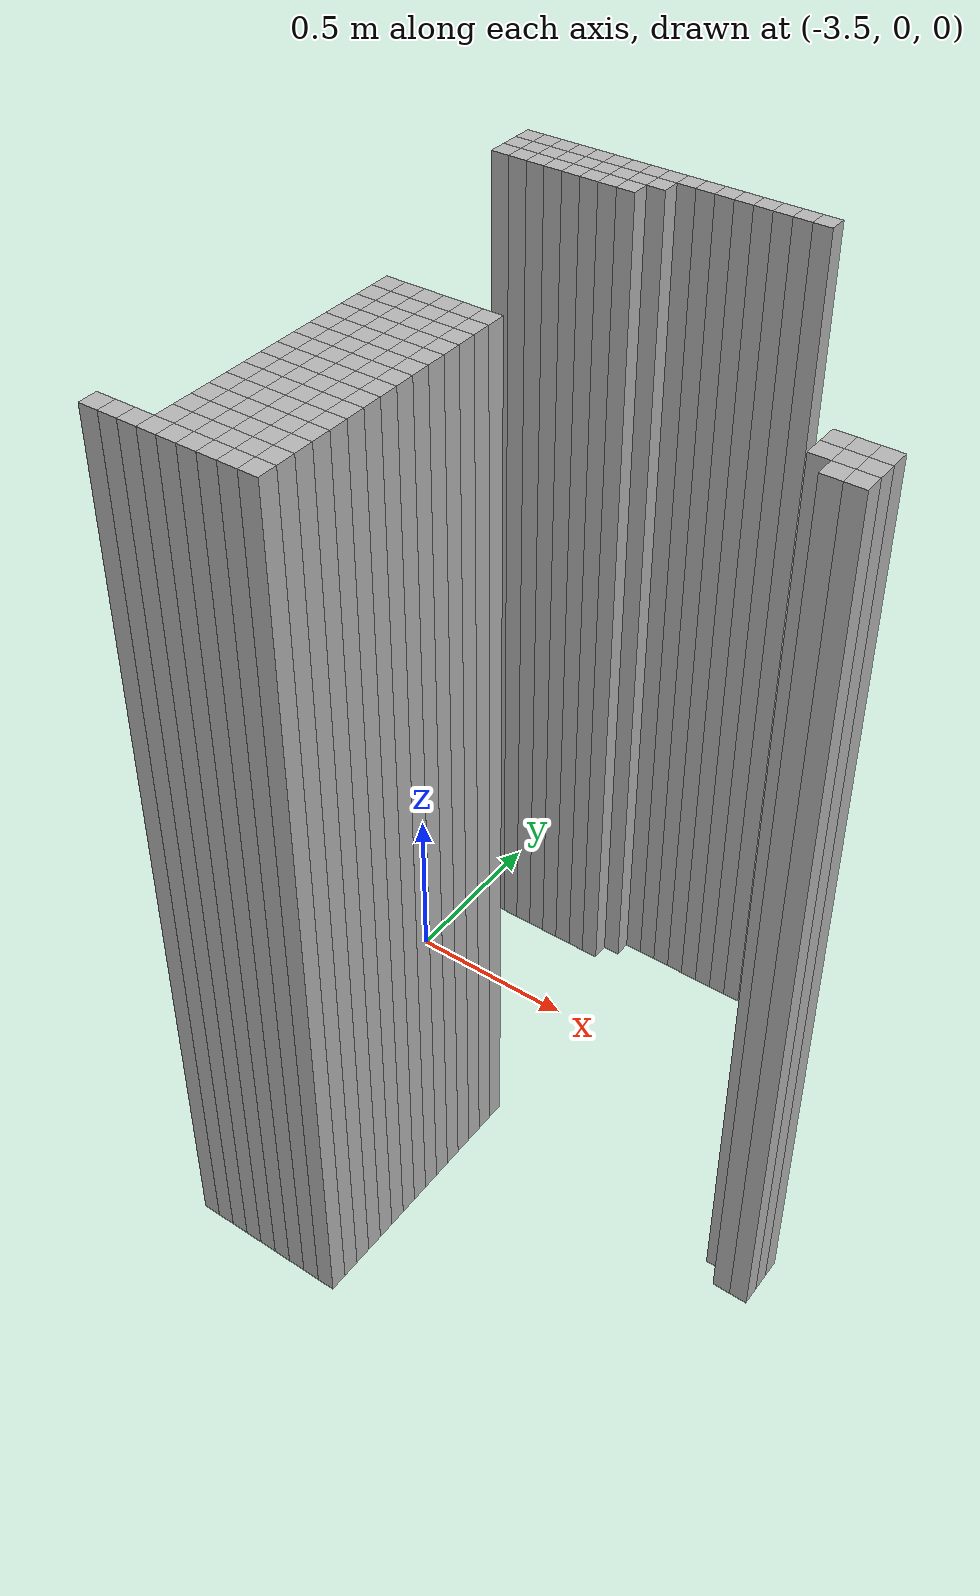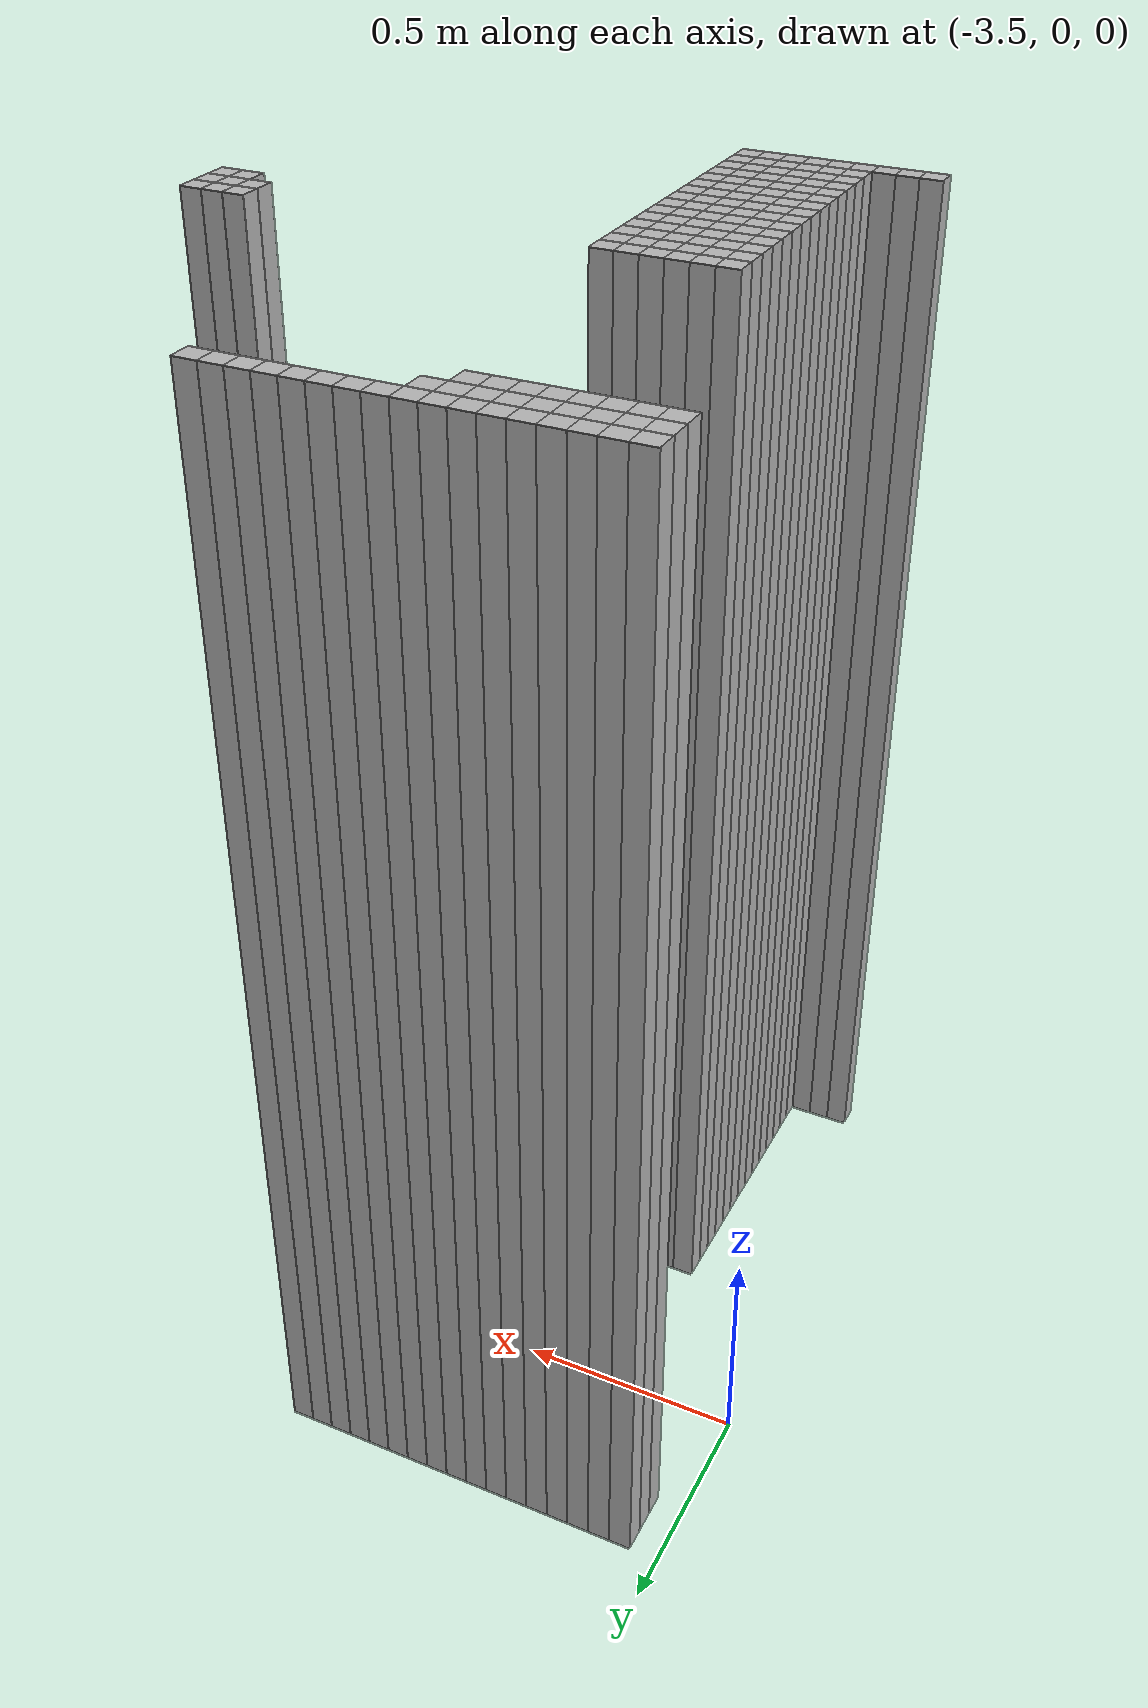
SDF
<sdf version="1.9">
 <world name="map_world">
  <model name="wall_155_146">
   <static>true</static>
   <pose>-3.411 0.380 1.250 0 0 0</pose>
   <link name="link">
    <collision name="collision"><geometry><box><size>0.050 0.050 2.500</size></box></geometry></collision>
    <visual name="visual"><geometry><box><size>0.050 0.050 2.500</size></box></geometry></visual>
   </link>
  </model>
  <model name="wall_156_146">
   <static>true</static>
   <pose>-3.361 0.380 1.250 0 0 0</pose>
   <link name="link">
    <collision name="collision"><geometry><box><size>0.050 0.050 2.500</size></box></geometry></collision>
    <visual name="visual"><geometry><box><size>0.050 0.050 2.500</size></box></geometry></visual>
   </link>
  </model>
  <model name="wall_157_146">
   <static>true</static>
   <pose>-3.311 0.380 1.250 0 0 0</pose>
   <link name="link">
    <collision name="collision"><geometry><box><size>0.050 0.050 2.500</size></box></geometry></collision>
    <visual name="visual"><geometry><box><size>0.050 0.050 2.500</size></box></geometry></visual>
   </link>
  </model>
  <model name="wall_158_146">
   <static>true</static>
   <pose>-3.261 0.380 1.250 0 0 0</pose>
   <link name="link">
    <collision name="collision"><geometry><box><size>0.050 0.050 2.500</size></box></geometry></collision>
    <visual name="visual"><geometry><box><size>0.050 0.050 2.500</size></box></geometry></visual>
   </link>
  </model>
  <model name="wall_159_146">
   <static>true</static>
   <pose>-3.211 0.380 1.250 0 0 0</pose>
   <link name="link">
    <collision name="collision"><geometry><box><size>0.050 0.050 2.500</size></box></geometry></collision>
    <visual name="visual"><geometry><box><size>0.050 0.050 2.500</size></box></geometry></visual>
   </link>
  </model>
  <model name="wall_160_146">
   <static>true</static>
   <pose>-3.161 0.380 1.250 0 0 0</pose>
   <link name="link">
    <collision name="collision"><geometry><box><size>0.050 0.050 2.500</size></box></geometry></collision>
    <visual name="visual"><geometry><box><size>0.050 0.050 2.500</size></box></geometry></visual>
   </link>
  </model>
  <model name="wall_161_146">
   <static>true</static>
   <pose>-3.111 0.380 1.250 0 0 0</pose>
   <link name="link">
    <collision name="collision"><geometry><box><size>0.050 0.050 2.500</size></box></geometry></collision>
    <visual name="visual"><geometry><box><size>0.050 0.050 2.500</size></box></geometry></visual>
   </link>
  </model>
  <model name="wall_162_146">
   <static>true</static>
   <pose>-3.061 0.380 1.250 0 0 0</pose>
   <link name="link">
    <collision name="collision"><geometry><box><size>0.050 0.050 2.500</size></box></geometry></collision>
    <visual name="visual"><geometry><box><size>0.050 0.050 2.500</size></box></geometry></visual>
   </link>
  </model>
  <model name="wall_163_146">
   <static>true</static>
   <pose>-3.011 0.380 1.250 0 0 0</pose>
   <link name="link">
    <collision name="collision"><geometry><box><size>0.050 0.050 2.500</size></box></geometry></collision>
    <visual name="visual"><geometry><box><size>0.050 0.050 2.500</size></box></geometry></visual>
   </link>
  </model>
  <model name="wall_164_146">
   <static>true</static>
   <pose>-2.961 0.380 1.250 0 0 0</pose>
   <link name="link">
    <collision name="collision"><geometry><box><size>0.050 0.050 2.500</size></box></geometry></collision>
    <visual name="visual"><geometry><box><size>0.050 0.050 2.500</size></box></geometry></visual>
   </link>
  </model>
  <model name="wall_165_146">
   <static>true</static>
   <pose>-2.911 0.380 1.250 0 0 0</pose>
   <link name="link">
    <collision name="collision"><geometry><box><size>0.050 0.050 2.500</size></box></geometry></collision>
    <visual name="visual"><geometry><box><size>0.050 0.050 2.500</size></box></geometry></visual>
   </link>
  </model>
  <model name="wall_166_146">
   <static>true</static>
   <pose>-2.861 0.380 1.250 0 0 0</pose>
   <link name="link">
    <collision name="collision"><geometry><box><size>0.050 0.050 2.500</size></box></geometry></collision>
    <visual name="visual"><geometry><box><size>0.050 0.050 2.500</size></box></geometry></visual>
   </link>
  </model>
  <model name="wall_167_146">
   <static>true</static>
   <pose>-2.811 0.380 1.250 0 0 0</pose>
   <link name="link">
    <collision name="collision"><geometry><box><size>0.050 0.050 2.500</size></box></geometry></collision>
    <visual name="visual"><geometry><box><size>0.050 0.050 2.500</size></box></geometry></visual>
   </link>
  </model>
  <model name="wall_168_146">
   <static>true</static>
   <pose>-2.761 0.380 1.250 0 0 0</pose>
   <link name="link">
    <collision name="collision"><geometry><box><size>0.050 0.050 2.500</size></box></geometry></collision>
    <visual name="visual"><geometry><box><size>0.050 0.050 2.500</size></box></geometry></visual>
   </link>
  </model>
  <model name="wall_169_146">
   <static>true</static>
   <pose>-2.711 0.380 1.250 0 0 0</pose>
   <link name="link">
    <collision name="collision"><geometry><box><size>0.050 0.050 2.500</size></box></geometry></collision>
    <visual name="visual"><geometry><box><size>0.050 0.050 2.500</size></box></geometry></visual>
   </link>
  </model>
  <model name="wall_170_146">
   <static>true</static>
   <pose>-2.661 0.380 1.250 0 0 0</pose>
   <link name="link">
    <collision name="collision"><geometry><box><size>0.050 0.050 2.500</size></box></geometry></collision>
    <visual name="visual"><geometry><box><size>0.050 0.050 2.500</size></box></geometry></visual>
   </link>
  </model>
  <model name="wall_171_146">
   <static>true</static>
   <pose>-2.611 0.380 1.250 0 0 0</pose>
   <link name="link">
    <collision name="collision"><geometry><box><size>0.050 0.050 2.500</size></box></geometry></collision>
    <visual name="visual"><geometry><box><size>0.050 0.050 2.500</size></box></geometry></visual>
   </link>
  </model>
  <model name="wall_155_147">
   <static>true</static>
   <pose>-3.411 0.330 1.250 0 0 0</pose>
   <link name="link">
    <collision name="collision"><geometry><box><size>0.050 0.050 2.500</size></box></geometry></collision>
    <visual name="visual"><geometry><box><size>0.050 0.050 2.500</size></box></geometry></visual>
   </link>
  </model>
  <model name="wall_156_147">
   <static>true</static>
   <pose>-3.361 0.330 1.250 0 0 0</pose>
   <link name="link">
    <collision name="collision"><geometry><box><size>0.050 0.050 2.500</size></box></geometry></collision>
    <visual name="visual"><geometry><box><size>0.050 0.050 2.500</size></box></geometry></visual>
   </link>
  </model>
  <model name="wall_157_147">
   <static>true</static>
   <pose>-3.311 0.330 1.250 0 0 0</pose>
   <link name="link">
    <collision name="collision"><geometry><box><size>0.050 0.050 2.500</size></box></geometry></collision>
    <visual name="visual"><geometry><box><size>0.050 0.050 2.500</size></box></geometry></visual>
   </link>
  </model>
  <model name="wall_158_147">
   <static>true</static>
   <pose>-3.261 0.330 1.250 0 0 0</pose>
   <link name="link">
    <collision name="collision"><geometry><box><size>0.050 0.050 2.500</size></box></geometry></collision>
    <visual name="visual"><geometry><box><size>0.050 0.050 2.500</size></box></geometry></visual>
   </link>
  </model>
  <model name="wall_159_147">
   <static>true</static>
   <pose>-3.211 0.330 1.250 0 0 0</pose>
   <link name="link">
    <collision name="collision"><geometry><box><size>0.050 0.050 2.500</size></box></geometry></collision>
    <visual name="visual"><geometry><box><size>0.050 0.050 2.500</size></box></geometry></visual>
   </link>
  </model>
  <model name="wall_160_147">
   <static>true</static>
   <pose>-3.161 0.330 1.250 0 0 0</pose>
   <link name="link">
    <collision name="collision"><geometry><box><size>0.050 0.050 2.500</size></box></geometry></collision>
    <visual name="visual"><geometry><box><size>0.050 0.050 2.500</size></box></geometry></visual>
   </link>
  </model>
  <model name="wall_161_147">
   <static>true</static>
   <pose>-3.111 0.330 1.250 0 0 0</pose>
   <link name="link">
    <collision name="collision"><geometry><box><size>0.050 0.050 2.500</size></box></geometry></collision>
    <visual name="visual"><geometry><box><size>0.050 0.050 2.500</size></box></geometry></visual>
   </link>
  </model>
  <model name="wall_162_147">
   <static>true</static>
   <pose>-3.061 0.330 1.250 0 0 0</pose>
   <link name="link">
    <collision name="collision"><geometry><box><size>0.050 0.050 2.500</size></box></geometry></collision>
    <visual name="visual"><geometry><box><size>0.050 0.050 2.500</size></box></geometry></visual>
   </link>
  </model>
  <model name="wall_163_147">
   <static>true</static>
   <pose>-3.011 0.330 1.250 0 0 0</pose>
   <link name="link">
    <collision name="collision"><geometry><box><size>0.050 0.050 2.500</size></box></geometry></collision>
    <visual name="visual"><geometry><box><size>0.050 0.050 2.500</size></box></geometry></visual>
   </link>
  </model>
  <model name="wall_155_148">
   <static>true</static>
   <pose>-3.411 0.280 1.250 0 0 0</pose>
   <link name="link">
    <collision name="collision"><geometry><box><size>0.050 0.050 2.500</size></box></geometry></collision>
    <visual name="visual"><geometry><box><size>0.050 0.050 2.500</size></box></geometry></visual>
   </link>
  </model>
  <model name="wall_156_148">
   <static>true</static>
   <pose>-3.361 0.280 1.250 0 0 0</pose>
   <link name="link">
    <collision name="collision"><geometry><box><size>0.050 0.050 2.500</size></box></geometry></collision>
    <visual name="visual"><geometry><box><size>0.050 0.050 2.500</size></box></geometry></visual>
   </link>
  </model>
  <model name="wall_157_148">
   <static>true</static>
   <pose>-3.311 0.280 1.250 0 0 0</pose>
   <link name="link">
    <collision name="collision"><geometry><box><size>0.050 0.050 2.500</size></box></geometry></collision>
    <visual name="visual"><geometry><box><size>0.050 0.050 2.500</size></box></geometry></visual>
   </link>
  </model>
  <model name="wall_158_148">
   <static>true</static>
   <pose>-3.261 0.280 1.250 0 0 0</pose>
   <link name="link">
    <collision name="collision"><geometry><box><size>0.050 0.050 2.500</size></box></geometry></collision>
    <visual name="visual"><geometry><box><size>0.050 0.050 2.500</size></box></geometry></visual>
   </link>
  </model>
  <model name="wall_159_148">
   <static>true</static>
   <pose>-3.211 0.280 1.250 0 0 0</pose>
   <link name="link">
    <collision name="collision"><geometry><box><size>0.050 0.050 2.500</size></box></geometry></collision>
    <visual name="visual"><geometry><box><size>0.050 0.050 2.500</size></box></geometry></visual>
   </link>
  </model>
  <model name="wall_160_148">
   <static>true</static>
   <pose>-3.161 0.280 1.250 0 0 0</pose>
   <link name="link">
    <collision name="collision"><geometry><box><size>0.050 0.050 2.500</size></box></geometry></collision>
    <visual name="visual"><geometry><box><size>0.050 0.050 2.500</size></box></geometry></visual>
   </link>
  </model>
  <model name="wall_161_148">
   <static>true</static>
   <pose>-3.111 0.280 1.250 0 0 0</pose>
   <link name="link">
    <collision name="collision"><geometry><box><size>0.050 0.050 2.500</size></box></geometry></collision>
    <visual name="visual"><geometry><box><size>0.050 0.050 2.500</size></box></geometry></visual>
   </link>
  </model>
  <model name="wall_162_148">
   <static>true</static>
   <pose>-3.061 0.280 1.250 0 0 0</pose>
   <link name="link">
    <collision name="collision"><geometry><box><size>0.050 0.050 2.500</size></box></geometry></collision>
    <visual name="visual"><geometry><box><size>0.050 0.050 2.500</size></box></geometry></visual>
   </link>
  </model>
  <model name="wall_159_162">
   <static>true</static>
   <pose>-3.211 -0.420 1.250 0 0 0</pose>
   <link name="link">
    <collision name="collision"><geometry><box><size>0.050 0.050 2.500</size></box></geometry></collision>
    <visual name="visual"><geometry><box><size>0.050 0.050 2.500</size></box></geometry></visual>
   </link>
  </model>
  <model name="wall_160_162">
   <static>true</static>
   <pose>-3.161 -0.420 1.250 0 0 0</pose>
   <link name="link">
    <collision name="collision"><geometry><box><size>0.050 0.050 2.500</size></box></geometry></collision>
    <visual name="visual"><geometry><box><size>0.050 0.050 2.500</size></box></geometry></visual>
   </link>
  </model>
  <model name="wall_161_162">
   <static>true</static>
   <pose>-3.111 -0.420 1.250 0 0 0</pose>
   <link name="link">
    <collision name="collision"><geometry><box><size>0.050 0.050 2.500</size></box></geometry></collision>
    <visual name="visual"><geometry><box><size>0.050 0.050 2.500</size></box></geometry></visual>
   </link>
  </model>
  <model name="wall_162_162">
   <static>true</static>
   <pose>-3.061 -0.420 1.250 0 0 0</pose>
   <link name="link">
    <collision name="collision"><geometry><box><size>0.050 0.050 2.500</size></box></geometry></collision>
    <visual name="visual"><geometry><box><size>0.050 0.050 2.500</size></box></geometry></visual>
   </link>
  </model>
  <model name="wall_163_162">
   <static>true</static>
   <pose>-3.011 -0.420 1.250 0 0 0</pose>
   <link name="link">
    <collision name="collision"><geometry><box><size>0.050 0.050 2.500</size></box></geometry></collision>
    <visual name="visual"><geometry><box><size>0.050 0.050 2.500</size></box></geometry></visual>
   </link>
  </model>
  <model name="wall_164_162">
   <static>true</static>
   <pose>-2.961 -0.420 1.250 0 0 0</pose>
   <link name="link">
    <collision name="collision"><geometry><box><size>0.050 0.050 2.500</size></box></geometry></collision>
    <visual name="visual"><geometry><box><size>0.050 0.050 2.500</size></box></geometry></visual>
   </link>
  </model>
  <model name="wall_180_162">
   <static>true</static>
   <pose>-2.161 -0.420 1.250 0 0 0</pose>
   <link name="link">
    <collision name="collision"><geometry><box><size>0.050 0.050 2.500</size></box></geometry></collision>
    <visual name="visual"><geometry><box><size>0.050 0.050 2.500</size></box></geometry></visual>
   </link>
  </model>
  <model name="wall_181_162">
   <static>true</static>
   <pose>-2.111 -0.420 1.250 0 0 0</pose>
   <link name="link">
    <collision name="collision"><geometry><box><size>0.050 0.050 2.500</size></box></geometry></collision>
    <visual name="visual"><geometry><box><size>0.050 0.050 2.500</size></box></geometry></visual>
   </link>
  </model>
  <model name="wall_182_162">
   <static>true</static>
   <pose>-2.061 -0.420 1.250 0 0 0</pose>
   <link name="link">
    <collision name="collision"><geometry><box><size>0.050 0.050 2.500</size></box></geometry></collision>
    <visual name="visual"><geometry><box><size>0.050 0.050 2.500</size></box></geometry></visual>
   </link>
  </model>
  <model name="wall_159_163">
   <static>true</static>
   <pose>-3.211 -0.470 1.250 0 0 0</pose>
   <link name="link">
    <collision name="collision"><geometry><box><size>0.050 0.050 2.500</size></box></geometry></collision>
    <visual name="visual"><geometry><box><size>0.050 0.050 2.500</size></box></geometry></visual>
   </link>
  </model>
  <model name="wall_160_163">
   <static>true</static>
   <pose>-3.161 -0.470 1.250 0 0 0</pose>
   <link name="link">
    <collision name="collision"><geometry><box><size>0.050 0.050 2.500</size></box></geometry></collision>
    <visual name="visual"><geometry><box><size>0.050 0.050 2.500</size></box></geometry></visual>
   </link>
  </model>
  <model name="wall_161_163">
   <static>true</static>
   <pose>-3.111 -0.470 1.250 0 0 0</pose>
   <link name="link">
    <collision name="collision"><geometry><box><size>0.050 0.050 2.500</size></box></geometry></collision>
    <visual name="visual"><geometry><box><size>0.050 0.050 2.500</size></box></geometry></visual>
   </link>
  </model>
  <model name="wall_162_163">
   <static>true</static>
   <pose>-3.061 -0.470 1.250 0 0 0</pose>
   <link name="link">
    <collision name="collision"><geometry><box><size>0.050 0.050 2.500</size></box></geometry></collision>
    <visual name="visual"><geometry><box><size>0.050 0.050 2.500</size></box></geometry></visual>
   </link>
  </model>
  <model name="wall_163_163">
   <static>true</static>
   <pose>-3.011 -0.470 1.250 0 0 0</pose>
   <link name="link">
    <collision name="collision"><geometry><box><size>0.050 0.050 2.500</size></box></geometry></collision>
    <visual name="visual"><geometry><box><size>0.050 0.050 2.500</size></box></geometry></visual>
   </link>
  </model>
  <model name="wall_164_163">
   <static>true</static>
   <pose>-2.961 -0.470 1.250 0 0 0</pose>
   <link name="link">
    <collision name="collision"><geometry><box><size>0.050 0.050 2.500</size></box></geometry></collision>
    <visual name="visual"><geometry><box><size>0.050 0.050 2.500</size></box></geometry></visual>
   </link>
  </model>
  <model name="wall_180_163">
   <static>true</static>
   <pose>-2.161 -0.470 1.250 0 0 0</pose>
   <link name="link">
    <collision name="collision"><geometry><box><size>0.050 0.050 2.500</size></box></geometry></collision>
    <visual name="visual"><geometry><box><size>0.050 0.050 2.500</size></box></geometry></visual>
   </link>
  </model>
  <model name="wall_181_163">
   <static>true</static>
   <pose>-2.111 -0.470 1.250 0 0 0</pose>
   <link name="link">
    <collision name="collision"><geometry><box><size>0.050 0.050 2.500</size></box></geometry></collision>
    <visual name="visual"><geometry><box><size>0.050 0.050 2.500</size></box></geometry></visual>
   </link>
  </model>
  <model name="wall_182_163">
   <static>true</static>
   <pose>-2.061 -0.470 1.250 0 0 0</pose>
   <link name="link">
    <collision name="collision"><geometry><box><size>0.050 0.050 2.500</size></box></geometry></collision>
    <visual name="visual"><geometry><box><size>0.050 0.050 2.500</size></box></geometry></visual>
   </link>
  </model>
  <model name="wall_159_164">
   <static>true</static>
   <pose>-3.211 -0.520 1.250 0 0 0</pose>
   <link name="link">
    <collision name="collision"><geometry><box><size>0.050 0.050 2.500</size></box></geometry></collision>
    <visual name="visual"><geometry><box><size>0.050 0.050 2.500</size></box></geometry></visual>
   </link>
  </model>
  <model name="wall_160_164">
   <static>true</static>
   <pose>-3.161 -0.520 1.250 0 0 0</pose>
   <link name="link">
    <collision name="collision"><geometry><box><size>0.050 0.050 2.500</size></box></geometry></collision>
    <visual name="visual"><geometry><box><size>0.050 0.050 2.500</size></box></geometry></visual>
   </link>
  </model>
  <model name="wall_161_164">
   <static>true</static>
   <pose>-3.111 -0.520 1.250 0 0 0</pose>
   <link name="link">
    <collision name="collision"><geometry><box><size>0.050 0.050 2.500</size></box></geometry></collision>
    <visual name="visual"><geometry><box><size>0.050 0.050 2.500</size></box></geometry></visual>
   </link>
  </model>
  <model name="wall_162_164">
   <static>true</static>
   <pose>-3.061 -0.520 1.250 0 0 0</pose>
   <link name="link">
    <collision name="collision"><geometry><box><size>0.050 0.050 2.500</size></box></geometry></collision>
    <visual name="visual"><geometry><box><size>0.050 0.050 2.500</size></box></geometry></visual>
   </link>
  </model>
  <model name="wall_163_164">
   <static>true</static>
   <pose>-3.011 -0.520 1.250 0 0 0</pose>
   <link name="link">
    <collision name="collision"><geometry><box><size>0.050 0.050 2.500</size></box></geometry></collision>
    <visual name="visual"><geometry><box><size>0.050 0.050 2.500</size></box></geometry></visual>
   </link>
  </model>
  <model name="wall_164_164">
   <static>true</static>
   <pose>-2.961 -0.520 1.250 0 0 0</pose>
   <link name="link">
    <collision name="collision"><geometry><box><size>0.050 0.050 2.500</size></box></geometry></collision>
    <visual name="visual"><geometry><box><size>0.050 0.050 2.500</size></box></geometry></visual>
   </link>
  </model>
  <model name="wall_181_164">
   <static>true</static>
   <pose>-2.111 -0.520 1.250 0 0 0</pose>
   <link name="link">
    <collision name="collision"><geometry><box><size>0.050 0.050 2.500</size></box></geometry></collision>
    <visual name="visual"><geometry><box><size>0.050 0.050 2.500</size></box></geometry></visual>
   </link>
  </model>
  <model name="wall_182_164">
   <static>true</static>
   <pose>-2.061 -0.520 1.250 0 0 0</pose>
   <link name="link">
    <collision name="collision"><geometry><box><size>0.050 0.050 2.500</size></box></geometry></collision>
    <visual name="visual"><geometry><box><size>0.050 0.050 2.500</size></box></geometry></visual>
   </link>
  </model>
  <model name="wall_159_165">
   <static>true</static>
   <pose>-3.211 -0.570 1.250 0 0 0</pose>
   <link name="link">
    <collision name="collision"><geometry><box><size>0.050 0.050 2.500</size></box></geometry></collision>
    <visual name="visual"><geometry><box><size>0.050 0.050 2.500</size></box></geometry></visual>
   </link>
  </model>
  <model name="wall_160_165">
   <static>true</static>
   <pose>-3.161 -0.570 1.250 0 0 0</pose>
   <link name="link">
    <collision name="collision"><geometry><box><size>0.050 0.050 2.500</size></box></geometry></collision>
    <visual name="visual"><geometry><box><size>0.050 0.050 2.500</size></box></geometry></visual>
   </link>
  </model>
  <model name="wall_161_165">
   <static>true</static>
   <pose>-3.111 -0.570 1.250 0 0 0</pose>
   <link name="link">
    <collision name="collision"><geometry><box><size>0.050 0.050 2.500</size></box></geometry></collision>
    <visual name="visual"><geometry><box><size>0.050 0.050 2.500</size></box></geometry></visual>
   </link>
  </model>
  <model name="wall_162_165">
   <static>true</static>
   <pose>-3.061 -0.570 1.250 0 0 0</pose>
   <link name="link">
    <collision name="collision"><geometry><box><size>0.050 0.050 2.500</size></box></geometry></collision>
    <visual name="visual"><geometry><box><size>0.050 0.050 2.500</size></box></geometry></visual>
   </link>
  </model>
  <model name="wall_163_165">
   <static>true</static>
   <pose>-3.011 -0.570 1.250 0 0 0</pose>
   <link name="link">
    <collision name="collision"><geometry><box><size>0.050 0.050 2.500</size></box></geometry></collision>
    <visual name="visual"><geometry><box><size>0.050 0.050 2.500</size></box></geometry></visual>
   </link>
  </model>
  <model name="wall_164_165">
   <static>true</static>
   <pose>-2.961 -0.570 1.250 0 0 0</pose>
   <link name="link">
    <collision name="collision"><geometry><box><size>0.050 0.050 2.500</size></box></geometry></collision>
    <visual name="visual"><geometry><box><size>0.050 0.050 2.500</size></box></geometry></visual>
   </link>
  </model>
  <model name="wall_159_166">
   <static>true</static>
   <pose>-3.211 -0.620 1.250 0 0 0</pose>
   <link name="link">
    <collision name="collision"><geometry><box><size>0.050 0.050 2.500</size></box></geometry></collision>
    <visual name="visual"><geometry><box><size>0.050 0.050 2.500</size></box></geometry></visual>
   </link>
  </model>
  <model name="wall_160_166">
   <static>true</static>
   <pose>-3.161 -0.620 1.250 0 0 0</pose>
   <link name="link">
    <collision name="collision"><geometry><box><size>0.050 0.050 2.500</size></box></geometry></collision>
    <visual name="visual"><geometry><box><size>0.050 0.050 2.500</size></box></geometry></visual>
   </link>
  </model>
  <model name="wall_161_166">
   <static>true</static>
   <pose>-3.111 -0.620 1.250 0 0 0</pose>
   <link name="link">
    <collision name="collision"><geometry><box><size>0.050 0.050 2.500</size></box></geometry></collision>
    <visual name="visual"><geometry><box><size>0.050 0.050 2.500</size></box></geometry></visual>
   </link>
  </model>
  <model name="wall_162_166">
   <static>true</static>
   <pose>-3.061 -0.620 1.250 0 0 0</pose>
   <link name="link">
    <collision name="collision"><geometry><box><size>0.050 0.050 2.500</size></box></geometry></collision>
    <visual name="visual"><geometry><box><size>0.050 0.050 2.500</size></box></geometry></visual>
   </link>
  </model>
  <model name="wall_163_166">
   <static>true</static>
   <pose>-3.011 -0.620 1.250 0 0 0</pose>
   <link name="link">
    <collision name="collision"><geometry><box><size>0.050 0.050 2.500</size></box></geometry></collision>
    <visual name="visual"><geometry><box><size>0.050 0.050 2.500</size></box></geometry></visual>
   </link>
  </model>
  <model name="wall_164_166">
   <static>true</static>
   <pose>-2.961 -0.620 1.250 0 0 0</pose>
   <link name="link">
    <collision name="collision"><geometry><box><size>0.050 0.050 2.500</size></box></geometry></collision>
    <visual name="visual"><geometry><box><size>0.050 0.050 2.500</size></box></geometry></visual>
   </link>
  </model>
  <model name="wall_159_167">
   <static>true</static>
   <pose>-3.211 -0.670 1.250 0 0 0</pose>
   <link name="link">
    <collision name="collision"><geometry><box><size>0.050 0.050 2.500</size></box></geometry></collision>
    <visual name="visual"><geometry><box><size>0.050 0.050 2.500</size></box></geometry></visual>
   </link>
  </model>
  <model name="wall_160_167">
   <static>true</static>
   <pose>-3.161 -0.670 1.250 0 0 0</pose>
   <link name="link">
    <collision name="collision"><geometry><box><size>0.050 0.050 2.500</size></box></geometry></collision>
    <visual name="visual"><geometry><box><size>0.050 0.050 2.500</size></box></geometry></visual>
   </link>
  </model>
  <model name="wall_161_167">
   <static>true</static>
   <pose>-3.111 -0.670 1.250 0 0 0</pose>
   <link name="link">
    <collision name="collision"><geometry><box><size>0.050 0.050 2.500</size></box></geometry></collision>
    <visual name="visual"><geometry><box><size>0.050 0.050 2.500</size></box></geometry></visual>
   </link>
  </model>
  <model name="wall_162_167">
   <static>true</static>
   <pose>-3.061 -0.670 1.250 0 0 0</pose>
   <link name="link">
    <collision name="collision"><geometry><box><size>0.050 0.050 2.500</size></box></geometry></collision>
    <visual name="visual"><geometry><box><size>0.050 0.050 2.500</size></box></geometry></visual>
   </link>
  </model>
  <model name="wall_163_167">
   <static>true</static>
   <pose>-3.011 -0.670 1.250 0 0 0</pose>
   <link name="link">
    <collision name="collision"><geometry><box><size>0.050 0.050 2.500</size></box></geometry></collision>
    <visual name="visual"><geometry><box><size>0.050 0.050 2.500</size></box></geometry></visual>
   </link>
  </model>
  <model name="wall_164_167">
   <static>true</static>
   <pose>-2.961 -0.670 1.250 0 0 0</pose>
   <link name="link">
    <collision name="collision"><geometry><box><size>0.050 0.050 2.500</size></box></geometry></collision>
    <visual name="visual"><geometry><box><size>0.050 0.050 2.500</size></box></geometry></visual>
   </link>
  </model>
  <model name="wall_159_168">
   <static>true</static>
   <pose>-3.211 -0.720 1.250 0 0 0</pose>
   <link name="link">
    <collision name="collision"><geometry><box><size>0.050 0.050 2.500</size></box></geometry></collision>
    <visual name="visual"><geometry><box><size>0.050 0.050 2.500</size></box></geometry></visual>
   </link>
  </model>
  <model name="wall_160_168">
   <static>true</static>
   <pose>-3.161 -0.720 1.250 0 0 0</pose>
   <link name="link">
    <collision name="collision"><geometry><box><size>0.050 0.050 2.500</size></box></geometry></collision>
    <visual name="visual"><geometry><box><size>0.050 0.050 2.500</size></box></geometry></visual>
   </link>
  </model>
  <model name="wall_161_168">
   <static>true</static>
   <pose>-3.111 -0.720 1.250 0 0 0</pose>
   <link name="link">
    <collision name="collision"><geometry><box><size>0.050 0.050 2.500</size></box></geometry></collision>
    <visual name="visual"><geometry><box><size>0.050 0.050 2.500</size></box></geometry></visual>
   </link>
  </model>
  <model name="wall_162_168">
   <static>true</static>
   <pose>-3.061 -0.720 1.250 0 0 0</pose>
   <link name="link">
    <collision name="collision"><geometry><box><size>0.050 0.050 2.500</size></box></geometry></collision>
    <visual name="visual"><geometry><box><size>0.050 0.050 2.500</size></box></geometry></visual>
   </link>
  </model>
  <model name="wall_163_168">
   <static>true</static>
   <pose>-3.011 -0.720 1.250 0 0 0</pose>
   <link name="link">
    <collision name="collision"><geometry><box><size>0.050 0.050 2.500</size></box></geometry></collision>
    <visual name="visual"><geometry><box><size>0.050 0.050 2.500</size></box></geometry></visual>
   </link>
  </model>
  <model name="wall_164_168">
   <static>true</static>
   <pose>-2.961 -0.720 1.250 0 0 0</pose>
   <link name="link">
    <collision name="collision"><geometry><box><size>0.050 0.050 2.500</size></box></geometry></collision>
    <visual name="visual"><geometry><box><size>0.050 0.050 2.500</size></box></geometry></visual>
   </link>
  </model>
  <model name="wall_159_169">
   <static>true</static>
   <pose>-3.211 -0.770 1.250 0 0 0</pose>
   <link name="link">
    <collision name="collision"><geometry><box><size>0.050 0.050 2.500</size></box></geometry></collision>
    <visual name="visual"><geometry><box><size>0.050 0.050 2.500</size></box></geometry></visual>
   </link>
  </model>
  <model name="wall_160_169">
   <static>true</static>
   <pose>-3.161 -0.770 1.250 0 0 0</pose>
   <link name="link">
    <collision name="collision"><geometry><box><size>0.050 0.050 2.500</size></box></geometry></collision>
    <visual name="visual"><geometry><box><size>0.050 0.050 2.500</size></box></geometry></visual>
   </link>
  </model>
  <model name="wall_161_169">
   <static>true</static>
   <pose>-3.111 -0.770 1.250 0 0 0</pose>
   <link name="link">
    <collision name="collision"><geometry><box><size>0.050 0.050 2.500</size></box></geometry></collision>
    <visual name="visual"><geometry><box><size>0.050 0.050 2.500</size></box></geometry></visual>
   </link>
  </model>
  <model name="wall_162_169">
   <static>true</static>
   <pose>-3.061 -0.770 1.250 0 0 0</pose>
   <link name="link">
    <collision name="collision"><geometry><box><size>0.050 0.050 2.500</size></box></geometry></collision>
    <visual name="visual"><geometry><box><size>0.050 0.050 2.500</size></box></geometry></visual>
   </link>
  </model>
  <model name="wall_163_169">
   <static>true</static>
   <pose>-3.011 -0.770 1.250 0 0 0</pose>
   <link name="link">
    <collision name="collision"><geometry><box><size>0.050 0.050 2.500</size></box></geometry></collision>
    <visual name="visual"><geometry><box><size>0.050 0.050 2.500</size></box></geometry></visual>
   </link>
  </model>
  <model name="wall_164_169">
   <static>true</static>
   <pose>-2.961 -0.770 1.250 0 0 0</pose>
   <link name="link">
    <collision name="collision"><geometry><box><size>0.050 0.050 2.500</size></box></geometry></collision>
    <visual name="visual"><geometry><box><size>0.050 0.050 2.500</size></box></geometry></visual>
   </link>
  </model>
  <model name="wall_159_170">
   <static>true</static>
   <pose>-3.211 -0.820 1.250 0 0 0</pose>
   <link name="link">
    <collision name="collision"><geometry><box><size>0.050 0.050 2.500</size></box></geometry></collision>
    <visual name="visual"><geometry><box><size>0.050 0.050 2.500</size></box></geometry></visual>
   </link>
  </model>
  <model name="wall_160_170">
   <static>true</static>
   <pose>-3.161 -0.820 1.250 0 0 0</pose>
   <link name="link">
    <collision name="collision"><geometry><box><size>0.050 0.050 2.500</size></box></geometry></collision>
    <visual name="visual"><geometry><box><size>0.050 0.050 2.500</size></box></geometry></visual>
   </link>
  </model>
  <model name="wall_161_170">
   <static>true</static>
   <pose>-3.111 -0.820 1.250 0 0 0</pose>
   <link name="link">
    <collision name="collision"><geometry><box><size>0.050 0.050 2.500</size></box></geometry></collision>
    <visual name="visual"><geometry><box><size>0.050 0.050 2.500</size></box></geometry></visual>
   </link>
  </model>
  <model name="wall_162_170">
   <static>true</static>
   <pose>-3.061 -0.820 1.250 0 0 0</pose>
   <link name="link">
    <collision name="collision"><geometry><box><size>0.050 0.050 2.500</size></box></geometry></collision>
    <visual name="visual"><geometry><box><size>0.050 0.050 2.500</size></box></geometry></visual>
   </link>
  </model>
  <model name="wall_163_170">
   <static>true</static>
   <pose>-3.011 -0.820 1.250 0 0 0</pose>
   <link name="link">
    <collision name="collision"><geometry><box><size>0.050 0.050 2.500</size></box></geometry></collision>
    <visual name="visual"><geometry><box><size>0.050 0.050 2.500</size></box></geometry></visual>
   </link>
  </model>
  <model name="wall_164_170">
   <static>true</static>
   <pose>-2.961 -0.820 1.250 0 0 0</pose>
   <link name="link">
    <collision name="collision"><geometry><box><size>0.050 0.050 2.500</size></box></geometry></collision>
    <visual name="visual"><geometry><box><size>0.050 0.050 2.500</size></box></geometry></visual>
   </link>
  </model>
  <model name="wall_159_171">
   <static>true</static>
   <pose>-3.211 -0.870 1.250 0 0 0</pose>
   <link name="link">
    <collision name="collision"><geometry><box><size>0.050 0.050 2.500</size></box></geometry></collision>
    <visual name="visual"><geometry><box><size>0.050 0.050 2.500</size></box></geometry></visual>
   </link>
  </model>
  <model name="wall_160_171">
   <static>true</static>
   <pose>-3.161 -0.870 1.250 0 0 0</pose>
   <link name="link">
    <collision name="collision"><geometry><box><size>0.050 0.050 2.500</size></box></geometry></collision>
    <visual name="visual"><geometry><box><size>0.050 0.050 2.500</size></box></geometry></visual>
   </link>
  </model>
  <model name="wall_161_171">
   <static>true</static>
   <pose>-3.111 -0.870 1.250 0 0 0</pose>
   <link name="link">
    <collision name="collision"><geometry><box><size>0.050 0.050 2.500</size></box></geometry></collision>
    <visual name="visual"><geometry><box><size>0.050 0.050 2.500</size></box></geometry></visual>
   </link>
  </model>
  <model name="wall_162_171">
   <static>true</static>
   <pose>-3.061 -0.870 1.250 0 0 0</pose>
   <link name="link">
    <collision name="collision"><geometry><box><size>0.050 0.050 2.500</size></box></geometry></collision>
    <visual name="visual"><geometry><box><size>0.050 0.050 2.500</size></box></geometry></visual>
   </link>
  </model>
  <model name="wall_163_171">
   <static>true</static>
   <pose>-3.011 -0.870 1.250 0 0 0</pose>
   <link name="link">
    <collision name="collision"><geometry><box><size>0.050 0.050 2.500</size></box></geometry></collision>
    <visual name="visual"><geometry><box><size>0.050 0.050 2.500</size></box></geometry></visual>
   </link>
  </model>
  <model name="wall_164_171">
   <static>true</static>
   <pose>-2.961 -0.870 1.250 0 0 0</pose>
   <link name="link">
    <collision name="collision"><geometry><box><size>0.050 0.050 2.500</size></box></geometry></collision>
    <visual name="visual"><geometry><box><size>0.050 0.050 2.500</size></box></geometry></visual>
   </link>
  </model>
  <model name="wall_159_172">
   <static>true</static>
   <pose>-3.211 -0.920 1.250 0 0 0</pose>
   <link name="link">
    <collision name="collision"><geometry><box><size>0.050 0.050 2.500</size></box></geometry></collision>
    <visual name="visual"><geometry><box><size>0.050 0.050 2.500</size></box></geometry></visual>
   </link>
  </model>
  <model name="wall_160_172">
   <static>true</static>
   <pose>-3.161 -0.920 1.250 0 0 0</pose>
   <link name="link">
    <collision name="collision"><geometry><box><size>0.050 0.050 2.500</size></box></geometry></collision>
    <visual name="visual"><geometry><box><size>0.050 0.050 2.500</size></box></geometry></visual>
   </link>
  </model>
  <model name="wall_161_172">
   <static>true</static>
   <pose>-3.111 -0.920 1.250 0 0 0</pose>
   <link name="link">
    <collision name="collision"><geometry><box><size>0.050 0.050 2.500</size></box></geometry></collision>
    <visual name="visual"><geometry><box><size>0.050 0.050 2.500</size></box></geometry></visual>
   </link>
  </model>
  <model name="wall_162_172">
   <static>true</static>
   <pose>-3.061 -0.920 1.250 0 0 0</pose>
   <link name="link">
    <collision name="collision"><geometry><box><size>0.050 0.050 2.500</size></box></geometry></collision>
    <visual name="visual"><geometry><box><size>0.050 0.050 2.500</size></box></geometry></visual>
   </link>
  </model>
  <model name="wall_163_172">
   <static>true</static>
   <pose>-3.011 -0.920 1.250 0 0 0</pose>
   <link name="link">
    <collision name="collision"><geometry><box><size>0.050 0.050 2.500</size></box></geometry></collision>
    <visual name="visual"><geometry><box><size>0.050 0.050 2.500</size></box></geometry></visual>
   </link>
  </model>
  <model name="wall_164_172">
   <static>true</static>
   <pose>-2.961 -0.920 1.250 0 0 0</pose>
   <link name="link">
    <collision name="collision"><geometry><box><size>0.050 0.050 2.500</size></box></geometry></collision>
    <visual name="visual"><geometry><box><size>0.050 0.050 2.500</size></box></geometry></visual>
   </link>
  </model>
  <model name="wall_159_173">
   <static>true</static>
   <pose>-3.211 -0.970 1.250 0 0 0</pose>
   <link name="link">
    <collision name="collision"><geometry><box><size>0.050 0.050 2.500</size></box></geometry></collision>
    <visual name="visual"><geometry><box><size>0.050 0.050 2.500</size></box></geometry></visual>
   </link>
  </model>
  <model name="wall_160_173">
   <static>true</static>
   <pose>-3.161 -0.970 1.250 0 0 0</pose>
   <link name="link">
    <collision name="collision"><geometry><box><size>0.050 0.050 2.500</size></box></geometry></collision>
    <visual name="visual"><geometry><box><size>0.050 0.050 2.500</size></box></geometry></visual>
   </link>
  </model>
  <model name="wall_161_173">
   <static>true</static>
   <pose>-3.111 -0.970 1.250 0 0 0</pose>
   <link name="link">
    <collision name="collision"><geometry><box><size>0.050 0.050 2.500</size></box></geometry></collision>
    <visual name="visual"><geometry><box><size>0.050 0.050 2.500</size></box></geometry></visual>
   </link>
  </model>
  <model name="wall_162_173">
   <static>true</static>
   <pose>-3.061 -0.970 1.250 0 0 0</pose>
   <link name="link">
    <collision name="collision"><geometry><box><size>0.050 0.050 2.500</size></box></geometry></collision>
    <visual name="visual"><geometry><box><size>0.050 0.050 2.500</size></box></geometry></visual>
   </link>
  </model>
  <model name="wall_163_173">
   <static>true</static>
   <pose>-3.011 -0.970 1.250 0 0 0</pose>
   <link name="link">
    <collision name="collision"><geometry><box><size>0.050 0.050 2.500</size></box></geometry></collision>
    <visual name="visual"><geometry><box><size>0.050 0.050 2.500</size></box></geometry></visual>
   </link>
  </model>
  <model name="wall_164_173">
   <static>true</static>
   <pose>-2.961 -0.970 1.250 0 0 0</pose>
   <link name="link">
    <collision name="collision"><geometry><box><size>0.050 0.050 2.500</size></box></geometry></collision>
    <visual name="visual"><geometry><box><size>0.050 0.050 2.500</size></box></geometry></visual>
   </link>
  </model>
  <model name="wall_159_174">
   <static>true</static>
   <pose>-3.211 -1.020 1.250 0 0 0</pose>
   <link name="link">
    <collision name="collision"><geometry><box><size>0.050 0.050 2.500</size></box></geometry></collision>
    <visual name="visual"><geometry><box><size>0.050 0.050 2.500</size></box></geometry></visual>
   </link>
  </model>
  <model name="wall_160_174">
   <static>true</static>
   <pose>-3.161 -1.020 1.250 0 0 0</pose>
   <link name="link">
    <collision name="collision"><geometry><box><size>0.050 0.050 2.500</size></box></geometry></collision>
    <visual name="visual"><geometry><box><size>0.050 0.050 2.500</size></box></geometry></visual>
   </link>
  </model>
  <model name="wall_161_174">
   <static>true</static>
   <pose>-3.111 -1.020 1.250 0 0 0</pose>
   <link name="link">
    <collision name="collision"><geometry><box><size>0.050 0.050 2.500</size></box></geometry></collision>
    <visual name="visual"><geometry><box><size>0.050 0.050 2.500</size></box></geometry></visual>
   </link>
  </model>
  <model name="wall_162_174">
   <static>true</static>
   <pose>-3.061 -1.020 1.250 0 0 0</pose>
   <link name="link">
    <collision name="collision"><geometry><box><size>0.050 0.050 2.500</size></box></geometry></collision>
    <visual name="visual"><geometry><box><size>0.050 0.050 2.500</size></box></geometry></visual>
   </link>
  </model>
  <model name="wall_163_174">
   <static>true</static>
   <pose>-3.011 -1.020 1.250 0 0 0</pose>
   <link name="link">
    <collision name="collision"><geometry><box><size>0.050 0.050 2.500</size></box></geometry></collision>
    <visual name="visual"><geometry><box><size>0.050 0.050 2.500</size></box></geometry></visual>
   </link>
  </model>
  <model name="wall_164_174">
   <static>true</static>
   <pose>-2.961 -1.020 1.250 0 0 0</pose>
   <link name="link">
    <collision name="collision"><geometry><box><size>0.050 0.050 2.500</size></box></geometry></collision>
    <visual name="visual"><geometry><box><size>0.050 0.050 2.500</size></box></geometry></visual>
   </link>
  </model>
  <model name="wall_159_175">
   <static>true</static>
   <pose>-3.211 -1.070 1.250 0 0 0</pose>
   <link name="link">
    <collision name="collision"><geometry><box><size>0.050 0.050 2.500</size></box></geometry></collision>
    <visual name="visual"><geometry><box><size>0.050 0.050 2.500</size></box></geometry></visual>
   </link>
  </model>
  <model name="wall_160_175">
   <static>true</static>
   <pose>-3.161 -1.070 1.250 0 0 0</pose>
   <link name="link">
    <collision name="collision"><geometry><box><size>0.050 0.050 2.500</size></box></geometry></collision>
    <visual name="visual"><geometry><box><size>0.050 0.050 2.500</size></box></geometry></visual>
   </link>
  </model>
  <model name="wall_161_175">
   <static>true</static>
   <pose>-3.111 -1.070 1.250 0 0 0</pose>
   <link name="link">
    <collision name="collision"><geometry><box><size>0.050 0.050 2.500</size></box></geometry></collision>
    <visual name="visual"><geometry><box><size>0.050 0.050 2.500</size></box></geometry></visual>
   </link>
  </model>
  <model name="wall_162_175">
   <static>true</static>
   <pose>-3.061 -1.070 1.250 0 0 0</pose>
   <link name="link">
    <collision name="collision"><geometry><box><size>0.050 0.050 2.500</size></box></geometry></collision>
    <visual name="visual"><geometry><box><size>0.050 0.050 2.500</size></box></geometry></visual>
   </link>
  </model>
  <model name="wall_163_175">
   <static>true</static>
   <pose>-3.011 -1.070 1.250 0 0 0</pose>
   <link name="link">
    <collision name="collision"><geometry><box><size>0.050 0.050 2.500</size></box></geometry></collision>
    <visual name="visual"><geometry><box><size>0.050 0.050 2.500</size></box></geometry></visual>
   </link>
  </model>
  <model name="wall_164_175">
   <static>true</static>
   <pose>-2.961 -1.070 1.250 0 0 0</pose>
   <link name="link">
    <collision name="collision"><geometry><box><size>0.050 0.050 2.500</size></box></geometry></collision>
    <visual name="visual"><geometry><box><size>0.050 0.050 2.500</size></box></geometry></visual>
   </link>
  </model>
  <model name="wall_156_176">
   <static>true</static>
   <pose>-3.361 -1.120 1.250 0 0 0</pose>
   <link name="link">
    <collision name="collision"><geometry><box><size>0.050 0.050 2.500</size></box></geometry></collision>
    <visual name="visual"><geometry><box><size>0.050 0.050 2.500</size></box></geometry></visual>
   </link>
  </model>
  <model name="wall_157_176">
   <static>true</static>
   <pose>-3.311 -1.120 1.250 0 0 0</pose>
   <link name="link">
    <collision name="collision"><geometry><box><size>0.050 0.050 2.500</size></box></geometry></collision>
    <visual name="visual"><geometry><box><size>0.050 0.050 2.500</size></box></geometry></visual>
   </link>
  </model>
  <model name="wall_158_176">
   <static>true</static>
   <pose>-3.261 -1.120 1.250 0 0 0</pose>
   <link name="link">
    <collision name="collision"><geometry><box><size>0.050 0.050 2.500</size></box></geometry></collision>
    <visual name="visual"><geometry><box><size>0.050 0.050 2.500</size></box></geometry></visual>
   </link>
  </model>
  <model name="wall_159_176">
   <static>true</static>
   <pose>-3.211 -1.120 1.250 0 0 0</pose>
   <link name="link">
    <collision name="collision"><geometry><box><size>0.050 0.050 2.500</size></box></geometry></collision>
    <visual name="visual"><geometry><box><size>0.050 0.050 2.500</size></box></geometry></visual>
   </link>
  </model>
  <model name="wall_160_176">
   <static>true</static>
   <pose>-3.161 -1.120 1.250 0 0 0</pose>
   <link name="link">
    <collision name="collision"><geometry><box><size>0.050 0.050 2.500</size></box></geometry></collision>
    <visual name="visual"><geometry><box><size>0.050 0.050 2.500</size></box></geometry></visual>
   </link>
  </model>
  <model name="wall_161_176">
   <static>true</static>
   <pose>-3.111 -1.120 1.250 0 0 0</pose>
   <link name="link">
    <collision name="collision"><geometry><box><size>0.050 0.050 2.500</size></box></geometry></collision>
    <visual name="visual"><geometry><box><size>0.050 0.050 2.500</size></box></geometry></visual>
   </link>
  </model>
  <model name="wall_162_176">
   <static>true</static>
   <pose>-3.061 -1.120 1.250 0 0 0</pose>
   <link name="link">
    <collision name="collision"><geometry><box><size>0.050 0.050 2.500</size></box></geometry></collision>
    <visual name="visual"><geometry><box><size>0.050 0.050 2.500</size></box></geometry></visual>
   </link>
  </model>
  <model name="wall_163_176">
   <static>true</static>
   <pose>-3.011 -1.120 1.250 0 0 0</pose>
   <link name="link">
    <collision name="collision"><geometry><box><size>0.050 0.050 2.500</size></box></geometry></collision>
    <visual name="visual"><geometry><box><size>0.050 0.050 2.500</size></box></geometry></visual>
   </link>
  </model>
  <model name="wall_164_176">
   <static>true</static>
   <pose>-2.961 -1.120 1.250 0 0 0</pose>
   <link name="link">
    <collision name="collision"><geometry><box><size>0.050 0.050 2.500</size></box></geometry></collision>
    <visual name="visual"><geometry><box><size>0.050 0.050 2.500</size></box></geometry></visual>
   </link>
  </model>
 </world>
</sdf>
